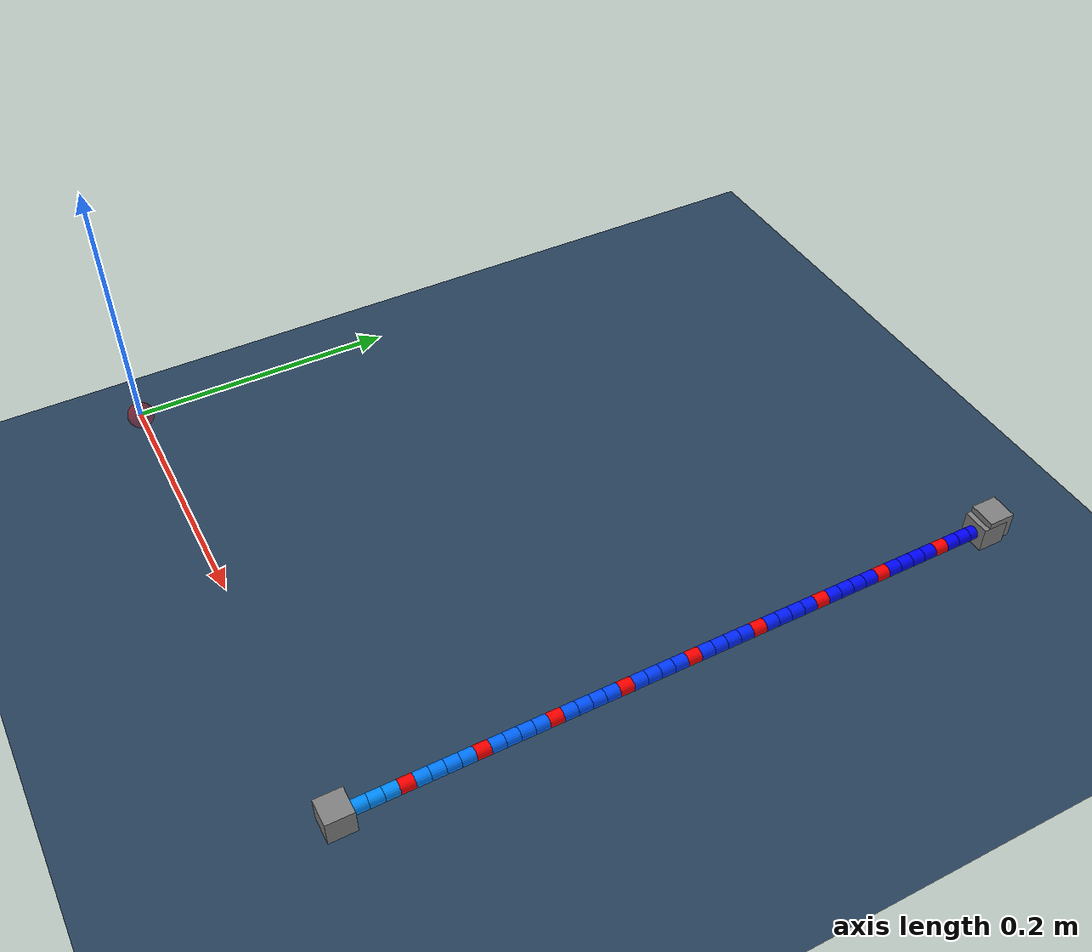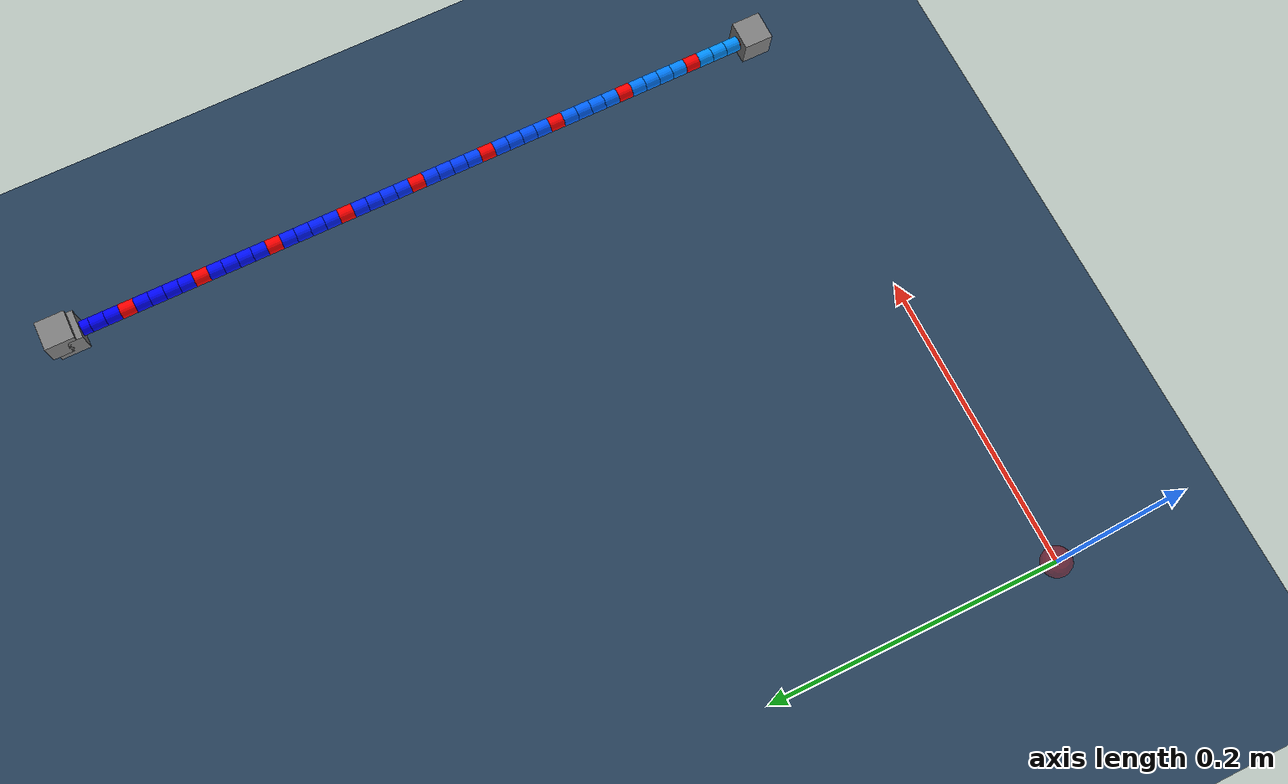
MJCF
<mujoco model="cable scene">

  <compiler angle="radian" meshdir="assets/" />
  <option gravity="0 0 0" />
  <option timestep="0.00001" /> <!-- in (s) = 0.7 ms -->
  <option cone="elliptic" impratio="300"/>
  <option><flag multiccd="enable"/> </option>
  <option noslip_iterations="3"></option>
  <statistic meansize="1" />
  <visual>
    <global azimuth="120" elevation="-20" />
    <headlight ambient="0.3 0.3 0.3" diffuse="0.6 0.6 0.6" specular="0 0 0" />
    <rgba haze="0.15 0.25 0.35 1" />
  </visual>

  <statistic extent="1" center="0.3 0 0.4" />

  <default>
    <joint armature="0.1" damping="1" />
    <geom condim="6" friction="0.5" solimp="0.1" />
  </default>

  <extension>
    <plugin plugin="mujoco.elasticity.cable">
      <instance name="composite">
        <config key="twist" value="1e7" />
        <config key="bend" value="4000000" />
        <config key="flat" value="false" />
      </instance>
    </plugin>
  </extension>

  <custom>
    <text name="composite_" data="rope_" />
  </custom>

  <asset>
      <texture type="skybox" builtin="gradient" rgb1="0.3 0.5 0.7" rgb2="0 0 0" width="512" height="3072"/>
      <texture type="2d" name="groundplane" builtin="checker" mark="edge" rgb1="0.2 0.3 0.4" rgb2="0.1 0.2 0.3"
                 markrgb="0.8 0.8 0.8" width="300" height="300"/>
      <material name="groundplane" texture="groundplane" texuniform="true" texrepeat="5 5" reflectance="0.01"/>
  </asset>

 <worldbody>
    <geom name="floor" size="0 0 0.05" pos="0 0 -0.1" type="plane" material="groundplane" />
    <light pos="0 0 1.5" dir="0 0 -1" directional="true" />
    <body name="Box_first">
      <geom size="0.01 0.01 0.01" pos="0.4 0 0.00" type="box" condim="6" friction="5" solimp="0.99 0.99 0.01"/>
      <joint name="pos_x" pos="0.3 0 0.005" axis="1 0 0" type="slide" armature="0.01" damping="5" />
      <joint name="pos_y" pos="0.3 0 0.005" axis="0 -1 0" type="slide" armature="0.01" damping="5" />
      <joint name="pos_z" pos="0.3 0 0.005" axis="0 0 1" type="slide" armature="0.01" damping="5" />
      <joint name="rot_x" pos="0.3 0 0.005" axis="1 0 0" type="hinge" armature="0.01" damping="5" />
      <joint name="rot_y" pos="0.3 0 0.005" axis="0 -1 0" type="hinge" armature="0.01" damping="5" />
      <joint name="rot_z" pos="0.3 0 0.005" axis="0 0 1" type="hinge" armature="0.01" damping="5" />
      <body name="CB0" pos="0.4 0 0.00" euler="0 0 1.570796327">
        <body name="B_first">
          <geom name="G0" size="0.005 0.00510204" pos="0.00510204 0 0" quat="0.707107 0 -0.707107 0" type="capsule" condim="1" friction="1" solimp="0.9" rgba="64 0 0 1" />
          <site name="S_first" pos="0 0 0" group="3" />
          <plugin instance="composite" />
          <body name="B_1" pos="0.0102041 0 0">
            <joint name="J_1" pos="0 0 0" type="ball" group="3" actuatorfrclimited="false" armature="0" damping="0.015" />
            <geom name="G1" size="0.005 0.00510204" pos="0.00510204 0 0" quat="0.707107 0 -0.707107 0" type="capsule" condim="1" friction="1" solimp="0.9" rgba="0 0.555899 1 1" />
            <plugin instance="composite" />
            <body name="B_2" pos="0.0102041 0 0">
              <joint name="J_2" pos="0 0 0" type="ball" group="3" actuatorfrclimited="false" armature="0" damping="0.015" />
              <geom name="G2" size="0.005 0.00510204" pos="0.00510204 0 0" quat="0.707107 0 -0.707107 0" type="capsule" condim="1" friction="1" solimp="0.9" rgba="0 0.555899 1 1" />
              <plugin instance="composite" />
              <body name="B_3" pos="0.0102041 0 0">
                <joint name="J_3" pos="0 0 0" type="ball" group="3" actuatorfrclimited="false" armature="0" damping="0.015" />
                <geom name="G3" size="0.005 0.00510204" pos="0.00510204 0 0" quat="0.707107 0 -0.707107 0" type="capsule" condim="1" friction="1" solimp="0.9" rgba="0 0.555899 1 1" />
                <plugin instance="composite" />
                <body name="B_4" pos="0.0102041 0 0">
                  <joint name="J_4" pos="0 0 0" type="ball" group="3" actuatorfrclimited="false" armature="0" damping="0.015" />
                  <geom name="G4" size="0.005 0.00510204" pos="0.00510204 0 0" quat="0.707107 0 -0.707107 0" type="capsule" condim="1" friction="1" solimp="0.9" rgba="64 0 0 1" />
                  <plugin instance="composite" />
                  <body name="B_5" pos="0.0102041 0 0">
                    <joint name="J_5" pos="0 0 0" type="ball" group="3" actuatorfrclimited="false" armature="0" damping="0.015" />
                    <geom name="G5" size="0.005 0.00510204" pos="0.00510204 0 0" quat="0.707107 0 -0.707107 0" type="capsule" condim="1" friction="1" solimp="0.9" rgba="0 0.504906 1 1" />
                    <plugin instance="composite" />
                    <body name="B_6" pos="0.0102041 0 0">
                      <joint name="J_6" pos="0 0 0" type="ball" group="3" actuatorfrclimited="false" armature="0" damping="0.015" />
                      <geom name="G6" size="0.005 0.00510204" pos="0.00510204 0 0" quat="0.707107 0 -0.707107 0" type="capsule" condim="1" friction="1" solimp="0.9" rgba="0 0.487781 1 1" />
                      <plugin instance="composite" />
                      <body name="B_7" pos="0.0102041 0 0">
                        <joint name="J_7" pos="0 0 0" type="ball" group="3" actuatorfrclimited="false" armature="0" damping="0.015" />
                        <geom name="G7" size="0.005 0.00510204" pos="0.00510204 0 0" quat="0.707107 0 -0.707107 0" type="capsule" condim="1" friction="1" solimp="0.9" rgba="0 0.470635 1 1" />
                        <plugin instance="composite" />
                        <body name="B_8" pos="0.0102041 0 0">
                          <joint name="J_8" pos="0 0 0" type="ball" group="3" actuatorfrclimited="false" armature="0" damping="0.015" />
                          <geom name="G8" size="0.005 0.00510204" pos="0.00510204 0 0" quat="0.707107 0 -0.707107 0" type="capsule" condim="1" friction="1" solimp="0.9" rgba="0 0.470635 1 1" />
                          <plugin instance="composite" />
                          <body name="B_9" pos="0.0102041 0 0">
                            <joint name="J_9" pos="0 0 0" type="ball" group="3" actuatorfrclimited="false" armature="0" damping="0.015" />
                            <geom name="G9" size="0.005 0.00510204" pos="0.00510204 0 0" quat="0.707107 0 -0.707107 0" type="capsule" condim="1" friction="1" solimp="0.9" rgba="64 0 0 1" />
                            <plugin instance="composite" />
                            <body name="B_10" pos="0.0102041 0 0">
                              <joint name="J_10" pos="0 0 0" type="ball" group="3" actuatorfrclimited="false" armature="0" damping="0.015" />
                              <geom name="G10" size="0.005 0.00510204" pos="0.00510204 0 0" quat="0.707107 0 -0.707107 0" type="capsule" condim="1" friction="1" solimp="0.9" rgba="0 0.419312 1 1" />
                              <plugin instance="composite" />
                              <body name="B_11" pos="0.0102041 0 0">
                                <joint name="J_11" pos="0 0 0" type="ball" group="3" actuatorfrclimited="false" armature="0" damping="0.015" />
                                <geom name="G11" size="0.005 0.00510204" pos="0.00510204 0 0" quat="0.707107 0 -0.707107 0" type="capsule" condim="1" friction="1" solimp="0.9" rgba="0 0.40232 1 1" />
                                <plugin instance="composite" />
                                <body name="B_12" pos="0.0102041 0 0">
                                  <joint name="J_12" pos="0 0 0" type="ball" group="3" actuatorfrclimited="false" armature="0" damping="0.015" />
                                  <geom name="G12" size="0.005 0.00510204" pos="0.00510204 0 0" quat="0.707107 0 -0.707107 0" type="capsule" condim="1" friction="1" solimp="0.9" rgba="0 0.385423 1 1" />
                                  <plugin instance="composite" />
                                  <body name="B_13" pos="0.0102041 0 0">
                                    <joint name="J_13" pos="0 0 0" type="ball" group="3" actuatorfrclimited="false" armature="0" damping="0.015" />
                                    <geom name="G13" size="0.005 0.00510205" pos="0.00510205 0 0" quat="0.707107 0 -0.707107 0" type="capsule" condim="1" friction="1" solimp="0.9" rgba="0 0.385423 1 1" />
                                    <plugin instance="composite" />
                                    <body name="B_14" pos="0.0102041 0 0">
                                      <joint name="J_14" pos="0 0 0" type="ball" group="3" actuatorfrclimited="false" armature="0" damping="0.015" />
                                      <geom name="G14" size="0.005 0.00510204" pos="0.00510204 0 0" quat="0.707107 0 -0.707107 0" type="capsule" condim="1" friction="1" solimp="0.9" rgba="64 0 0 1" />
                                      <plugin instance="composite" />
                                      <body name="B_15" pos="0.0102041 0 0">
                                        <joint name="J_15" pos="0 0 0" type="ball" group="3" actuatorfrclimited="false" armature="0" damping="0.015" />
                                        <geom name="G15" size="0.005 0.00510204" pos="0.00510204 0 0" quat="0.707107 0 -0.707107 0" type="capsule" condim="1" friction="1" solimp="0.9" rgba="0 0.335515 1 1" />
                                        <plugin instance="composite" />
                                        <body name="B_16" pos="0.0102041 0 0">
                                          <joint name="J_16" pos="0 0 0" type="ball" group="3" actuatorfrclimited="false" armature="0" damping="0.015" />
                                          <geom name="G16" size="0.005 0.00510205" pos="0.00510205 0 0" quat="0.707107 0 -0.707107 0" type="capsule" condim="1" friction="1" solimp="0.9" rgba="0 0.319207 1 1" />
                                          <plugin instance="composite" />
                                          <body name="B_17" pos="0.0102041 0 0">
                                            <joint name="J_17" pos="0 0 0" type="ball" group="3" actuatorfrclimited="false" armature="0" damping="0.015" />
                                            <geom name="G17" size="0.005 0.00510204" pos="0.00510204 0 0" quat="0.707107 0 -0.707107 0" type="capsule" condim="1" friction="1" solimp="0.9" rgba="0 0.303095 1 1" />
                                            <plugin instance="composite" />
                                            <body name="B_18" pos="0.0102041 0 0">
                                              <joint name="J_18" pos="0 0 0" type="ball" group="3" actuatorfrclimited="false" armature="0" damping="0.015" />
                                              <geom name="G18" size="0.005 0.00510204" pos="0.00510204 0 0" quat="0.707107 0 -0.707107 0" type="capsule" condim="1" friction="1" solimp="0.9" rgba="0 0.287198 1 1" />
                                              <plugin instance="composite" />
                                              <body name="B_19" pos="0.0102041 0 0">
                                                <joint name="J_19" pos="0 0 0" type="ball" group="3" actuatorfrclimited="false" armature="0" damping="0.015" />
                                                <geom name="G19" size="0.005 0.00510205" pos="0.00510205 0 0" quat="0.707107 0 -0.707107 0" type="capsule" condim="1" friction="1" solimp="0.9" rgba="64 0 0 1" />
                                                <plugin instance="composite" />
                                                <body name="B_20" pos="0.0102041 0 0">
                                                  <joint name="J_20" pos="0 0 0" type="ball" group="3" actuatorfrclimited="false" armature="0" damping="0.015" />
                                                  <geom name="G20" size="0.005 0.00510204" pos="0.00510204 0 0" quat="0.707107 0 -0.707107 0" type="capsule" condim="1" friction="1" solimp="0.9" rgba="0 0.256122 1 1" />
                                                  <plugin instance="composite" />
                                                  <body name="B_21" pos="0.0102041 0 0">
                                                    <joint name="J_21" pos="0 0 0" type="ball" group="3" actuatorfrclimited="false" armature="0" damping="0.015" />
                                                    <geom name="G21" size="0.005 0.00510204" pos="0.00510204 0 0" quat="0.707107 0 -0.707107 0" type="capsule" condim="1" friction="1" solimp="0.9" rgba="0 0.24098 1 1" />
                                                    <plugin instance="composite" />
                                                    <body name="B_22" pos="0.0102041 0 0">
                                                      <joint name="J_22" pos="0 0 0" type="ball" group="3" actuatorfrclimited="false" armature="0" damping="0.015" />
                                                      <geom name="G22" size="0.005 0.00510205" pos="0.00510205 0 0" quat="0.707107 0 -0.707107 0" type="capsule" condim="1" friction="1" solimp="0.9" rgba="0 0.226124 1 1" />
                                                      <plugin instance="composite" />
                                                      <body name="B_23" pos="0.0102041 0 0">
                                                        <joint name="J_23" pos="0 0 0" type="ball" group="3" actuatorfrclimited="false" armature="0" damping="0.015" />
                                                        <geom name="G23" size="0.005 0.00510204" pos="0.00510204 0 0" quat="0.707107 0 -0.707107 0" type="capsule" condim="1" friction="1" solimp="0.9" rgba="0 0.211573 1 1" />
                                                        <plugin instance="composite" />
                                                        <body name="B_24" pos="0.0102041 0 0">
                                                          <joint name="J_24" pos="0 0 0" type="ball" group="3" actuatorfrclimited="false" armature="0" damping="0.015" />
                                                          <geom name="G24" size="0.005 0.00510204" pos="0.00510204 0 0" quat="0.707107 0 -0.707107 0" type="capsule" condim="1" friction="1" solimp="0.9" rgba="64 0 0 1" />
                                                          <plugin instance="composite" />
                                                          <body name="B_25" pos="0.0102041 0 0">
                                                            <joint name="J_25" pos="0 0 0" type="ball" group="3" actuatorfrclimited="false" armature="0" damping="0.015" />
                                                            <geom name="G25" size="0.005 0.00510204" pos="0.00510204 0 0" quat="0.707107 0 -0.707107 0" type="capsule" condim="1" friction="1" solimp="0.9" rgba="0 0.183453 1 1" />
                                                            <plugin instance="composite" />
                                                            <body name="B_26" pos="0.0102041 0 0">
                                                              <joint name="J_26" pos="0 0 0" type="ball" group="3" actuatorfrclimited="false" armature="0" damping="0.015" />
                                                              <geom name="G26" size="0.005 0.00510204" pos="0.00510204 0 0" quat="0.707107 0 -0.707107 0" type="capsule" condim="1" friction="1" solimp="0.9" rgba="0 0.169919 1 1" />
                                                              <plugin instance="composite" />
                                                              <body name="B_27" pos="0.0102041 0 0">
                                                                <joint name="J_27" pos="0 0 0" type="ball" group="3" actuatorfrclimited="false" armature="0" damping="0.015" />
                                                                <geom name="G27" size="0.005 0.00510205" pos="0.00510205 0 0" quat="0.707107 0 -0.707107 0" type="capsule" condim="1" friction="1" solimp="0.9" rgba="0 0.156758 1 1" />
                                                                <plugin instance="composite" />
                                                                <body name="B_28" pos="0.0102041 0 0">
                                                                  <joint name="J_28" pos="0 0 0" type="ball" group="3" actuatorfrclimited="false" armature="0" damping="0.015" />
                                                                  <geom name="G28" size="0.005 0.00510204" pos="0.00510204 0 0" quat="0.707107 0 -0.707107 0" type="capsule" condim="1" friction="1" solimp="0.9" rgba="0 0.14399 1 1" />
                                                                  <plugin instance="composite" />
                                                                  <body name="B_29" pos="0.0102041 0 0">
                                                                    <joint name="J_29" pos="0 0 0" type="ball" group="3" actuatorfrclimited="false" armature="0" damping="0.015" />
                                                                    <geom name="G29" size="0.005 0.00510204" pos="0.00510204 0 0" quat="0.707107 0 -0.707107 0" type="capsule" condim="1" friction="1" solimp="0.9" rgba="64 0 0 1" />
                                                                    <plugin instance="composite" />
                                                                    <body name="B_30" pos="0.0102041 0 0">
                                                                      <joint name="J_30" pos="0 0 0" type="ball" group="3" actuatorfrclimited="false" armature="0" damping="0.015" />
                                                                      <geom name="G30" size="0.005 0.00510204" pos="0.00510204 0 0" quat="0.707107 0 -0.707107 0" type="capsule" condim="1" friction="1" solimp="0.9" rgba="0 0.119698 1 1" />
                                                                      <plugin instance="composite" />
                                                                      <body name="B_31" pos="0.0102041 0 0">
                                                                        <joint name="J_31" pos="0 0 0" type="ball" group="3" actuatorfrclimited="false" armature="0" damping="0.015" />
                                                                        <geom name="G31" size="0.005 0.00510204" pos="0.00510204 0 0" quat="0.707107 0 -0.707107 0" type="capsule" condim="1" friction="1" solimp="0.9" rgba="0 0.10821 1 1" />
                                                                        <plugin instance="composite" />
                                                                        <body name="B_32" pos="0.0102041 0 0">
                                                                          <joint name="J_32" pos="0 0 0" type="ball" group="3" actuatorfrclimited="false" armature="0" damping="0.015" />
                                                                          <geom name="G32" size="0.005 0.00510204" pos="0.00510204 0 0" quat="0.707107 0 -0.707107 0" type="capsule" condim="1" friction="1" solimp="0.9" rgba="0 0.0971868 1 1" />
                                                                          <plugin instance="composite" />
                                                                          <body name="B_33" pos="0.0102041 0 0">
                                                                            <joint name="J_33" pos="0 0 0" type="ball" group="3" actuatorfrclimited="false" armature="0" damping="0.015" />
                                                                            <geom name="G33" size="0.005 0.00510205" pos="0.00510205 0 0" quat="0.707107 0 -0.707107 0" type="capsule" condim="1" friction="1" solimp="0.9" rgba="0 0.0866457 1 1" />
                                                                            <plugin instance="composite" />
                                                                            <body name="B_34" pos="0.0102041 0 0">
                                                                              <joint name="J_34" pos="0 0 0" type="ball" group="3" actuatorfrclimited="false" armature="0" damping="0.015" />
                                                                              <geom name="G34" size="0.005 0.00510204" pos="0.00510204 0 0" quat="0.707107 0 -0.707107 0" type="capsule" condim="1" friction="1" solimp="0.9" rgba="64 0 0 1" />
                                                                              <plugin instance="composite" />
                                                                              <body name="B_35" pos="0.0102041 0 0">
                                                                                <joint name="J_35" pos="0 0 0" type="ball" group="3" actuatorfrclimited="false" armature="0" damping="0.015" />
                                                                                <geom name="G35" size="0.005 0.00510204" pos="0.00510204 0 0" quat="0.707107 0 -0.707107 0" type="capsule" condim="1" friction="1" solimp="0.9" rgba="0 0.0670875 1 1" />
                                                                                <plugin instance="composite" />
                                                                                <body name="B_36" pos="0.0102041 0 0">
                                                                                  <joint name="J_36" pos="0 0 0" type="ball" group="3" actuatorfrclimited="false" armature="0" damping="0.015" />
                                                                                  <geom name="G36" size="0.005 0.00510204" pos="0.00510204 0 0" quat="0.707107 0 -0.707107 0" type="capsule" condim="1" friction="1" solimp="0.9" rgba="0 0.0581095 1 1" />
                                                                                  <plugin instance="composite" />
                                                                                  <body name="B_37" pos="0.0102041 0 0">
                                                                                    <joint name="J_37" pos="0 0 0" type="ball" group="3" actuatorfrclimited="false" armature="0" damping="0.015" />
                                                                                    <geom name="G37" size="0.005 0.00510204" pos="0.00510204 0 0" quat="0.707107 0 -0.707107 0" type="capsule" condim="1" friction="1" solimp="0.9" rgba="0 0.0496924 1 1" />
                                                                                    <plugin instance="composite" />
                                                                                    <body name="B_38" pos="0.0102041 0 0">
                                                                                      <joint name="J_38" pos="0 0 0" type="ball" group="3" actuatorfrclimited="false" armature="0" damping="0.015" />
                                                                                      <geom name="G38" size="0.005 0.00510204" pos="0.00510204 0 0" quat="0.707107 0 -0.707107 0" type="capsule" condim="1" friction="1" solimp="0.9" rgba="0 0.0418567 1 1" />
                                                                                      <plugin instance="composite" />
                                                                                      <body name="B_39" pos="0.0102041 0 0">
                                                                                        <joint name="J_39" pos="0 0 0" type="ball" group="3" actuatorfrclimited="false" armature="0" damping="0.015" />
                                                                                        <geom name="G39" size="0.005 0.00510205" pos="0.00510205 0 0" quat="0.707107 0 -0.707107 0" type="capsule" condim="1" friction="1" solimp="0.9" rgba="64 0 0 1" />
                                                                                        <plugin instance="composite" />
                                                                                        <body name="B_40" pos="0.0102041 0 0">
                                                                                          <joint name="J_40" pos="0 0 0" type="ball" group="3" actuatorfrclimited="false" armature="0" damping="0.015" />
                                                                                          <geom name="G40" size="0.005 0.00510204" pos="0.00510204 0 0" quat="0.707107 0 -0.707107 0" type="capsule" condim="1" friction="1" solimp="0.9" rgba="0 0.0280127 1 1" />
                                                                                          <plugin instance="composite" />
                                                                                          <body name="B_41" pos="0.0102041 0 0">
                                                                                            <joint name="J_41" pos="0 0 0" type="ball" group="3" actuatorfrclimited="false" armature="0" damping="0.015" />
                                                                                            <geom name="G41" size="0.005 0.00510204" pos="0.00510204 0 0" quat="0.707107 0 -0.707107 0" type="capsule" condim="1" friction="1" solimp="0.9" rgba="0 0.0220472 1 1" />
                                                                                            <plugin instance="composite" />
                                                                                            <body name="B_42" pos="0.0102041 0 0">
                                                                                              <joint name="J_42" pos="0 0 0" type="ball" group="3" actuatorfrclimited="false" armature="0" damping="0.015" />
                                                                                              <geom name="G42" size="0.005 0.00510204" pos="0.00510204 0 0" quat="0.707107 0 -0.707107 0" type="capsule" condim="1" friction="1" solimp="0.9" rgba="0 0.0167485 1 1" />
                                                                                              <plugin instance="composite" />
                                                                                              <body name="B_43" pos="0.0102041 0 0">
                                                                                                <joint name="J_43" pos="0 0 0" type="ball" group="3" actuatorfrclimited="false" armature="0" damping="0.015" />
                                                                                                <geom name="G43" size="0.005 0.00510204" pos="0.00510204 0 0" quat="0.707107 0 -0.707107 0" type="capsule" condim="1" friction="1" solimp="0.9" rgba="0 0.0121384 1 1" />
                                                                                                <plugin instance="composite" />
                                                                                                <body name="B_44" pos="0.0102041 0 0">
                                                                                                  <joint name="J_44" pos="0 0 0" type="ball" group="3" actuatorfrclimited="false" armature="0" damping="0.015" />
                                                                                                  <geom name="G44" size="0.005 0.00510204" pos="0.00510204 0 0" quat="0.707107 0 -0.707107 0" type="capsule" condim="1" friction="1" solimp="0.9" rgba="64 0 0 1" />
                                                                                                  <plugin instance="composite" />
                                                                                                  <body name="B_45" pos="0.0102041 0 0">
                                                                                                    <joint name="J_45" pos="0 0 0" type="ball" group="3" actuatorfrclimited="false" armature="0" damping="0.015" />
                                                                                                    <geom name="G45" size="0.005 0.00510205" pos="0.00510205 0 0" quat="0.707107 0 -0.707107 0" type="capsule" condim="1" friction="1" solimp="0.9" rgba="0 0.00507439 1 1" />
                                                                                                    <plugin instance="composite" />
                                                                                                    <body name="B_46" pos="0.0102041 0 0">
                                                                                                      <joint name="J_46" pos="0 0 0" type="ball" group="3" actuatorfrclimited="false" armature="0" damping="0.015" />
                                                                                                      <geom name="G46" size="0.005 0.00510204" pos="0.00510204 0 0" quat="0.707107 0 -0.707107 0" type="capsule" condim="1" friction="1" solimp="0.9" rgba="0 0.00266574 1 1" />
                                                                                                      <plugin instance="composite" />
                                                                                                      <body name="B_47" pos="0.0102041 0 0">
                                                                                                        <joint name="J_47" pos="0 0 0" type="ball" group="3" actuatorfrclimited="false" armature="0" damping="0.015" />
                                                                                                        <geom name="G47" size="0.005 0.00510204" pos="0.00510204 0 0" quat="0.707107 0 -0.707107 0" type="capsule" condim="1" friction="1" solimp="0.9" rgba="0 0.00103654 1 1" />
                                                                                                        <plugin instance="composite" />
                                                                                                        <body name="B_last" pos="0.0102041 0 0">
                                                                                                          <joint name="J_last" pos="0 0 0" type="ball" group="3" actuatorfrclimited="false" armature="0" damping="0.015" />
                                                                                                          <geom name="G48" size="0.005 0.00510204" pos="0.00510204 0 0" quat="0.707107 0 -0.707107 0" type="capsule" condim="1" friction="1" solimp="0.9" rgba="0 0.000419681 1 1" />
                                                                                                          <site name="S_last" pos="0.0102041 0 0" group="3" />
                                                                                                          <body name="cube_body_1" pos="0 0 0">
                                                                                                            <geom name="cube_geom" type="box" size="0.01 0.01 0.01" pos="0.006 0 0" condim="6" />
                                                                                                          </body>
                                                                                                          <plugin instance="composite" />
                                                                                                        </body>
                                                                                                      </body>
                                                                                                    </body>
                                                                                                  </body>
                                                                                                </body>
                                                                                              </body>
                                                                                            </body>
                                                                                          </body>
                                                                                        </body>
                                                                                      </body>
                                                                                    </body>
                                                                                  </body>
                                                                                </body>
                                                                              </body>
                                                                            </body>
                                                                          </body>
                                                                        </body>
                                                                      </body>
                                                                    </body>
                                                                  </body>
                                                                </body>
                                                              </body>
                                                            </body>
                                                          </body>
                                                        </body>
                                                      </body>
                                                    </body>
                                                  </body>
                                                </body>
                                              </body>
                                            </body>
                                          </body>
                                        </body>
                                      </body>
                                    </body>
                                  </body>
                                </body>
                              </body>
                            </body>
                          </body>
                        </body>
                      </body>
                    </body>
                  </body>
                </body>
              </body>
            </body>
          </body>
        </body>
      </body>
    </body>
    <body name="cube_body" pos="0.4 0.5 0.005">
     <geom name="cube_geom_2" type="box" size="0.01 0.01 0.01" pos="0.00 0 0" condim="6" />
    </body>
<body name="target_body_1" mocap="true">
    <geom type="sphere" size="0.01" rgba="1 0 0 0.35" contype="0" conaffinity="0"/>
</body>
<body name="target_body_2" mocap="true">
    <geom type="sphere" size="0.01" rgba="1 0 0 0.35" contype="0" conaffinity="0"/>
</body>
<body name="target_body_3" mocap="true">
    <geom type="sphere" size="0.01" rgba="1 0 0 0.35" contype="0" conaffinity="0"/>
</body>
<body name="target_body_4" mocap="true">
    <geom type="sphere" size="0.01" rgba="1 0 0 0.35" contype="0" conaffinity="0"/>
</body>
<body name="target_body_5" mocap="true">
    <geom type="sphere" size="0.01" rgba="1 0 0 0.35" contype="0" conaffinity="0"/>
</body>
<body name="target_body_6" mocap="true">
    <geom type="sphere" size="0.01" rgba="1 0 0 0.35" contype="0" conaffinity="0"/>
</body>
<body name="target_body_7" mocap="true">
    <geom type="sphere" size="0.01" rgba="1 0 0 0.35" contype="0" conaffinity="0"/>
</body>
<body name="target_body_8" mocap="true">
    <geom type="sphere" size="0.01" rgba="1 0 0 0.35" contype="0" conaffinity="0"/>
</body>
<body name="target_body_9" mocap="true">
    <geom type="sphere" size="0.01" rgba="1 0 0 0.35" contype="0" conaffinity="0"/>
</body>

  </worldbody>

  <equality>

      <weld name="relpose" body1="cube_body_1" body2="cube_body" anchor="-.025 0 0" solref="0.00001 1" solimp="1 .99 .00001" />

  </equality>
  <contact>
    <exclude body1="B_first" body2="B_1" />
    <exclude body1="B_1" body2="B_2" />
    <exclude body1="B_2" body2="B_3" />
    <exclude body1="B_3" body2="B_4" />
    <exclude body1="B_4" body2="B_5" />
    <exclude body1="B_5" body2="B_6" />
    <exclude body1="B_6" body2="B_7" />
    <exclude body1="B_7" body2="B_8" />
    <exclude body1="B_8" body2="B_9" />
    <exclude body1="B_9" body2="B_10" />
    <exclude body1="B_10" body2="B_11" />
    <exclude body1="B_11" body2="B_12" />
    <exclude body1="B_12" body2="B_13" />
    <exclude body1="B_13" body2="B_14" />
    <exclude body1="B_14" body2="B_15" />
    <exclude body1="B_15" body2="B_16" />
    <exclude body1="B_16" body2="B_17" />
    <exclude body1="B_17" body2="B_18" />
    <exclude body1="B_18" body2="B_19" />
    <exclude body1="B_19" body2="B_20" />
    <exclude body1="B_20" body2="B_21" />
    <exclude body1="B_21" body2="B_22" />
    <exclude body1="B_22" body2="B_23" />
    <exclude body1="B_23" body2="B_24" />
    <exclude body1="B_24" body2="B_25" />
    <exclude body1="B_25" body2="B_26" />
    <exclude body1="B_26" body2="B_27" />
    <exclude body1="B_27" body2="B_28" />
    <exclude body1="B_28" body2="B_29" />
    <exclude body1="B_29" body2="B_30" />
    <exclude body1="B_30" body2="B_31" />
    <exclude body1="B_31" body2="B_32" />
    <exclude body1="B_32" body2="B_33" />
    <exclude body1="B_33" body2="B_34" />
    <exclude body1="B_34" body2="B_35" />
    <exclude body1="B_35" body2="B_36" />
    <exclude body1="B_36" body2="B_37" />
    <exclude body1="B_37" body2="B_38" />
    <exclude body1="B_38" body2="B_39" />
    <exclude body1="B_39" body2="B_40" />
    <exclude body1="B_40" body2="B_41" />
    <exclude body1="B_41" body2="B_42" />
    <exclude body1="B_42" body2="B_43" />
    <exclude body1="B_43" body2="B_44" />
    <exclude body1="B_44" body2="B_45" />
    <exclude body1="B_45" body2="B_46" />
    <exclude body1="B_46" body2="B_47" />
    <exclude body1="B_47" body2="B_last" />
    <exclude body1="cube_body" body2="B_last" />
    <exclude body1="cube_body_1" body2="B_last" />
    <exclude body1="cube_body_1" body2="cube_body" />
  </contact>

</mujoco>
